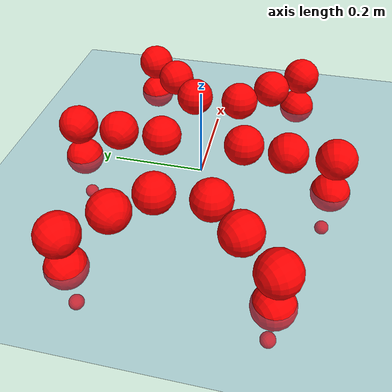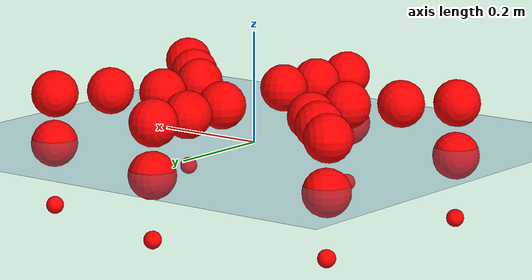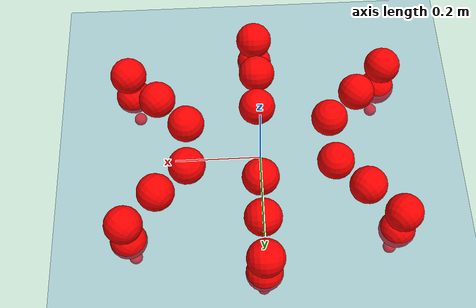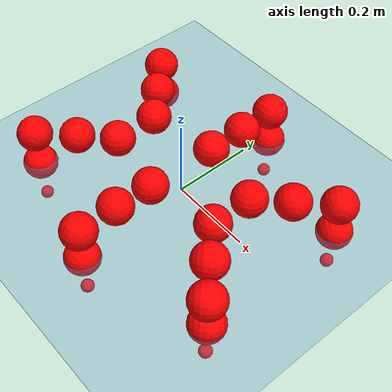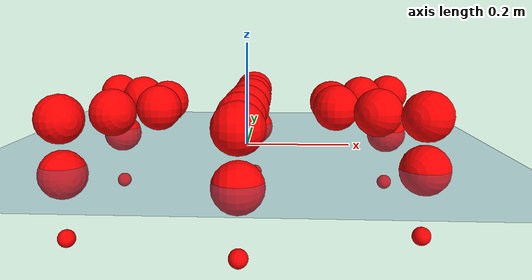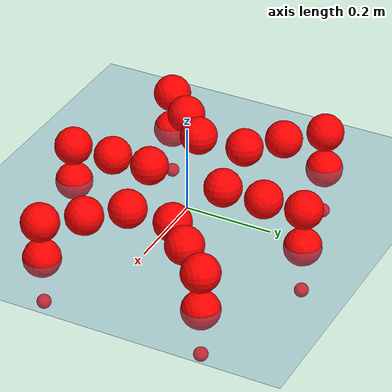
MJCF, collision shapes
<mujoco model="Golem">
  <compiler angle="radian" assetdir="assets" balanceinertia="true" inertiafromgeom="false"/>

  <option timestep="0.005" density="1.2" viscosity="2e-05"/>

  <size nkey="1"/>

  <visual>
    <quality shadowsize="8192"/>
    <map shadowclip="0.5"/>
  </visual>

  <default>
    <default class="/">
      <joint armature="0.01" damping="0.01" frictionloss="0.01"/>
      <geom contype="0" conaffinity="0" group="1" solref="-1000 -80"/>
      <site size="0.01 0.005 0.005" group="5"/>
      <general forcelimited="true" biastype="affine" gainprm="25" biasprm="0 -25 -0.5"/>
      <default class="visual">
        <geom type="mesh" group="2"/>
      </default>
      <default class="collision">
        <geom group="3"/>
      </default>
      <default class="foot">
        <geom size="0.01 0 0" condim="6" group="4" priority="1" solimp="0.015 1 0.01"/>
      </default>
      <default class="reward_collision_sphere">
        <geom group="5" rgba="1 0 0 1"/>
      </default>
    </default>
  </default>

  <asset>
    <texture type="skybox" colorspace="auto" name="//unnamed_texture_0" builtin="gradient" rgb1="0.95 0.95 0.95" rgb2="0.95 0.95 0.95" width="100" height="600"/>
    <texture type="2d" colorspace="auto" name="texplane" builtin="checker" rgb1="0.345 0.575 0.748" rgb2="0.345 0.575 0.748" markrgb="1 1 1" width="512" height="512"/>
    <material name="MatPlane" class="/" texture="texplane" texuniform="true" texrepeat="2 2" specular="0.9"/>
    <mesh name="body" class="/" file="body.stl" scale="0.001 0.001 0.001"/>
    <mesh name="coxa" class="/" file="coxa.stl" scale="0.001 0.001 0.001"/>
    <mesh name="femur" class="/" file="femur.stl" scale="0.001 0.001 0.001"/>
    <mesh name="tibia" class="/" file="tibia.stl" scale="0.001 0.001 0.001"/>
    <mesh name="tarsus" class="/" file="tarsus.stl" scale="0.001 0.001 0.001"/>
  </asset>

  <worldbody>
    <geom name="floor" class="/" size="100 100 0.125" type="plane" group="0" material="MatPlane"/>
    <light name="toplight_shadow" class="/" pos="0 0 5" dir="0.0990148 0.0990148 -0.990148" type="directional" ambient="0.04 0.04 0.04" diffuse="0.55 0.55 0.55" specular="0.12 0.12 0.12"/>
    <light name="toplight_fill" class="/" pos="0 0 5" dir="0.0990148 0.0990148 -0.990148" type="directional" castshadow="false" ambient="0.04 0.04 0.04" diffuse="0.3 0.3 0.3" specular="0.08 0.08 0.08"/>
    <body name="trunk" pos="0.00027887 -0.000895114 0.000485387" quat="0.999999 -0.000129103 0.000528918 0.001443">
      <inertial pos="-0.00196704 -0.00422983 -0.00460617" quat="0.99998 -0.00250992 0.00441938 -0.00369645" mass="4.59959" diaginertia="0.014355 0.00624601 0.0291255"/>
      <joint name="//unnamed_joint_0" type="free"/>
      <geom name="//unnamed_geom_1" class="/" pos="0 0 0.078358" quat="1 0 0 0" type="mesh" rgba="0.9 0.9 0.9 1" mesh="body"/>
      <site name="imu" class="/" pos="0.141248 -0.00717836 0.114284" size="0.0106385"/>
      <camera name="track" class="/" pos="0 -1.81142 0" quat="0.707107 0.707107 0 0" mode="trackcom"/>
      <camera name="ego_camera" class="/" pos="0.137996 0 0.122434" quat="-0.5 -0.5 0.5 0.5"/>
      <body name="coxa_RR" pos="-0.187361 -0.0770113 0.0787217" quat="0.382376 0.000492388 -0.000719559 -0.924006">
        <inertial pos="0.000595571 0.00203656 0.00201666" quat="0.999767 -0.0115992 -0.016671 -0.00734035" mass="0.222805" diaginertia="0.0131167 0.00609028 0.0258075"/>
        <joint name="coxa_joint_RR" class="/" pos="0 0 0" axis="-0.0031077 -0.00730235 -0.999969" stiffness="0.00151409" range="-3.14894 3.22295" armature="0.00856287" damping="0" frictionloss="0.0110173"/>
        <geom name="//unnamed_geom_2" class="/" type="mesh" rgba="0.2 0.2 0.2 1" mesh="coxa"/>
        <geom name="//unnamed_geom_3" class="reward_collision_sphere" size="0.0425542" pos="-0.0318453 0 0"/>
        <body name="femur_RR" pos="0.0645702 -0.0018028 0.000164302" quat="0.499499 -0.500157 0.500167 0.500178">
          <inertial pos="-0.00253182 0.00201208 0.000641829" quat="0.999939 0.00149062 0.0064543 -0.00885487" mass="0.233336" diaginertia="0.013145 0.00592866 0.0276947"/>
          <joint name="femur_joint_RR" class="/" pos="0 0 0" axis="0.00571027 0.00225932 -0.999981" range="-3.11732 3.12498" armature="0.0105938" damping="0.0391739" frictionloss="0.01178"/>
          <geom name="//unnamed_geom_4" class="/" type="mesh" rgba="0.9 0.9 0.9 1" mesh="femur"/>
          <geom name="//unnamed_geom_5" class="reward_collision_sphere" size="0.0425542"/>
          <body name="tibia_RR" pos="0.00144648 -0.100915 0.0013027" quat="-0.000153544 1 -0.000714917 0.000102419">
            <inertial pos="0.00043845 0.00198379 0.000642223" quat="0.999946 0.00394963 0.00227246 -0.0093512" mass="0.225791" diaginertia="0.0137182 0.00595827 0.0270178"/>
            <joint name="tibia_joint_RR" class="/" pos="0 0 0" axis="0.00467948 0.00369864 0.999982" range="-3.18423 3.14835" armature="0.0106716" damping="0.0129796" frictionloss="0.010373"/>
            <geom name="//unnamed_geom_6" class="/" type="mesh" rgba="0.2 0.2 0.2 1" mesh="tibia"/>
            <geom name="//unnamed_geom_7" class="reward_collision_sphere" size="0.0425542"/>
            <body name="tarsus_RR" pos="0.0956768 -0.000702877 -0.000758297" quat="1 -8.65255e-05 -7.65256e-05 -0.00037972">
              <inertial pos="0.0660141 -0.000750327 -0.00213297" quat="0.503295 0.497612 0.50072 0.498352" mass="0.232667" diaginertia="0.0126273 0.00582526 0.0266944"/>
              <joint name="tarsus_joint_RR" class="/" pos="0 0 0" axis="-0.0163052 0.0131645 0.99978" stiffness="0.00146732" range="-3.14813 3.14324" armature="0.0115695" damping="0.0507255" frictionloss="0.0111485"/>
              <geom name="//unnamed_geom_8" class="/" type="mesh" rgba="0.9 0.9 0.9 1" mesh="tarsus"/>
              <geom name="foot_1" class="foot" size="0.00932927" pos="0.118889 0 0" quat="0 -0.707107 0 0.707107"/>
              <geom name="//unnamed_geom_10" class="reward_collision_sphere" size="0.0425542"/>
              <geom name="//unnamed_geom_11" class="reward_collision_sphere" size="0.0159578" pos="0.114112 0 0"/>
              <site name="foot_1" class="foot" pos="0.118889 0 0" quat="0 -0.707107 0 0.707107" size="0.0106385"/>
            </body>
          </body>
        </body>
      </body>
      <body name="coxa_RM" pos="0.00245986 -0.121913 0.0841572" quat="0.707495 -0.000395124 0.000777942 -0.706718">
        <inertial pos="0.00226805 0.000583362 -0.00223875" quat="0.999997 0.00201044 0.00107562 -0.000579118" mass="0.231188" diaginertia="0.0127399 0.00601934 0.0265527"/>
        <joint name="coxa_joint_RM" class="/" pos="0 0 0" axis="0.00015588 -0.00176696 -0.999998" stiffness="0.00507443" range="-3.15604 3.1572" armature="0.0105428" damping="0.0202933" frictionloss="0.0109568"/>
        <geom name="//unnamed_geom_12" class="/" type="mesh" rgba="0.2 0.2 0.2 1" mesh="coxa"/>
        <geom name="//unnamed_geom_13" class="reward_collision_sphere" size="0.0425542" pos="-0.0318453 0 0"/>
        <body name="femur_RM" pos="0.0613841 -0.00377107 -0.00212872" quat="0.499812 -0.499744 0.499917 0.500527">
          <inertial pos="0.00138569 -0.00133644 0.00226507" quat="0.999834 0.0133393 -0.0033483 0.0119556" mass="0.259645" diaginertia="0.0138734 0.00643779 0.0280417"/>
          <joint name="femur_joint_RM" class="/" pos="0 0 0" axis="-0.000553124 0.00181485 -0.999998" range="-3.06132 3.08642" armature="0.0110375" damping="0.0277546" frictionloss="0.0106793"/>
          <geom name="//unnamed_geom_14" class="/" type="mesh" rgba="0.9 0.9 0.9 1" mesh="femur"/>
          <geom name="//unnamed_geom_15" class="reward_collision_sphere" size="0.0425542"/>
          <body name="tibia_RM" pos="0.00207315 -0.0983274 0.00228167" quat="3.44122e-05 0.999998 0.000449387 0.00201402">
            <inertial pos="-7.50815e-05 0.000993662 -0.00260082" quat="0.999995 -0.00247189 -0.00106671 0.0014642" mass="0.2426" diaginertia="0.0132468 0.00615357 0.028373"/>
            <joint name="tibia_joint_RM" class="/" pos="0 0 0" axis="0.0107527 -0.00544055 0.999927" stiffness="0.0166133" range="-3.13596 3.13866" armature="0.00955474" damping="0.00972686" frictionloss="0.00923326"/>
            <geom name="//unnamed_geom_16" class="/" type="mesh" rgba="0.2 0.2 0.2 1" mesh="tibia"/>
            <geom name="//unnamed_geom_17" class="reward_collision_sphere" size="0.0425542"/>
            <body name="tarsus_RM" pos="0.0917628 0.00134289 0.00076727" quat="0.999999 0.000811793 0.000282833 0.000803421">
              <inertial pos="0.0643183 0.00131588 0.000122102" quat="0.494913 0.49319 0.503473 0.508271" mass="0.242802" diaginertia="0.0134205 0.00614949 0.0285644"/>
              <joint name="tarsus_joint_RM" class="/" pos="0 0 0" axis="-0.00470021 -0.00570946 0.999973" stiffness="0.00550271" range="-3.14027 3.05808" armature="0.0100035" damping="0.010356" frictionloss="0.0127923"/>
              <geom name="//unnamed_geom_18" class="/" type="mesh" rgba="0.9 0.9 0.9 1" mesh="tarsus"/>
              <geom name="foot_2" class="foot" size="0.0117706" pos="0.118889 0 0" quat="0 -0.707107 0 0.707107"/>
              <geom name="//unnamed_geom_20" class="reward_collision_sphere" size="0.0425542"/>
              <geom name="//unnamed_geom_21" class="reward_collision_sphere" size="0.0159578" pos="0.114112 0 0"/>
              <site name="foot_2" class="foot" pos="0.118889 0 0" quat="0 -0.707107 0 0.707107" size="0.0106385"/>
            </body>
          </body>
        </body>
      </body>
      <body name="coxa_RF" pos="0.191226 -0.076633 0.0811545" quat="0.924201 0.000302308 -0.000743196 -0.381906">
        <inertial pos="-0.00255805 -0.00282327 0.000174352" quat="1 0.000520091 8.98139e-05 0.0001451" mass="0.245554" diaginertia="0.0129314 0.00599567 0.0270947"/>
        <joint name="coxa_joint_RF" class="/" pos="0 0 0" axis="-0.0106466 -0.00547878 -0.999928" stiffness="0.0257881" range="-3.10244 3.19593" armature="0.0092971" damping="0.00464269" frictionloss="0.0116232"/>
        <geom name="//unnamed_geom_22" class="/" type="mesh" rgba="0.2 0.2 0.2 1" mesh="coxa"/>
        <geom name="//unnamed_geom_23" class="reward_collision_sphere" size="0.0425542" pos="-0.0318453 0 0"/>
        <body name="femur_RF" pos="0.0635593 -0.00102365 0.00111299" quat="0.49947 -0.499641 0.500071 0.500817">
          <inertial pos="0.000919076 -0.00108988 -0.00357314" quat="0.999968 -0.0054296 0.00375753 0.00460158" mass="0.2528" diaginertia="0.0140776 0.00633318 0.0297076"/>
          <joint name="femur_joint_RF" class="/" pos="0 0 0" axis="0.0147934 -0.0127603 -0.999809" range="-3.16728 3.11487" armature="0.00833045" damping="0.0137901" frictionloss="0.010315"/>
          <geom name="//unnamed_geom_24" class="/" type="mesh" rgba="0.9 0.9 0.9 1" mesh="femur"/>
          <geom name="//unnamed_geom_25" class="reward_collision_sphere" size="0.0425542"/>
          <body name="tibia_RF" pos="-0.00392362 -0.0961246 0.000680735" quat="0.000351911 1 -0.000378025 0.000365565">
            <inertial pos="0.00124433 -1.12957e-05 0.000543787" quat="0.999991 -0.00138148 -0.00158759 -0.00375852" mass="0.235781" diaginertia="0.0139997 0.00611328 0.0263103"/>
            <joint name="tibia_joint_RF" class="/" pos="0 0 0" axis="0.00535114 -0.00166427 0.999984" range="-3.1501 3.08183" armature="0.0116963" damping="0.00203427" frictionloss="0.0119466"/>
            <geom name="//unnamed_geom_26" class="/" type="mesh" rgba="0.2 0.2 0.2 1" mesh="tibia"/>
            <geom name="//unnamed_geom_27" class="reward_collision_sphere" size="0.0425542"/>
            <body name="tarsus_RF" pos="0.0900424 -0.000688367 -0.000714898" quat="0.999998 0.00152464 -0.000870937 -0.000735673">
              <inertial pos="0.0617221 0.000294491 0.000958908" quat="0.498532 0.501793 0.500047 0.499623" mass="0.238419" diaginertia="0.0132034 0.00598624 0.027958"/>
              <joint name="tarsus_joint_RF" class="/" pos="0 0 0" axis="0.00843133 0.00953957 0.999919" range="-3.1496 3.12359" armature="0.0106994" damping="0.0111489" frictionloss="0.0110407"/>
              <geom name="//unnamed_geom_28" class="/" type="mesh" rgba="0.9 0.9 0.9 1" mesh="tarsus"/>
              <geom name="foot_3" class="foot" size="0.00977797" pos="0.118889 0 0" quat="0 -0.707107 0 0.707107"/>
              <geom name="//unnamed_geom_30" class="reward_collision_sphere" size="0.0425542"/>
              <geom name="//unnamed_geom_31" class="reward_collision_sphere" size="0.0159578" pos="0.114112 0 0"/>
              <site name="foot_3" class="foot" pos="0.118889 0 0" quat="0 -0.707107 0 0.707107" size="0.0106385"/>
            </body>
          </body>
        </body>
      </body>
      <body name="coxa_LR" pos="-0.191451 0.0794469 0.0774103" quat="0.38186 0.000466236 -0.000320096 0.92422">
        <inertial pos="0.000140999 -0.000284798 0.00288972" quat="0.999998 0.000971749 -0.00166061 0.000315863" mass="0.234558" diaginertia="0.013716 0.00622826 0.0287666"/>
        <joint name="coxa_joint_LR" class="/" pos="0 0 0" axis="-0.00229922 0.00867858 -0.99996" range="-3.16513 3.13649" armature="0.00968894" damping="0.00658029" frictionloss="0.0102793"/>
        <geom name="//unnamed_geom_32" class="/" type="mesh" rgba="0.2 0.2 0.2 1" mesh="coxa"/>
        <geom name="//unnamed_geom_33" class="reward_collision_sphere" size="0.0425542" pos="-0.0318453 0 0"/>
        <body name="femur_LR" pos="0.0609771 0.000270017 0.00314216" quat="0.500605 -0.500063 0.49895 0.500381">
          <inertial pos="-0.000495629 -0.00203025 0.00151048" quat="0.999943 0.00515473 0.00741874 -0.00575674" mass="0.248506" diaginertia="0.0137634 0.00600902 0.0278341"/>
          <joint name="femur_joint_LR" class="/" pos="0 0 0" axis="0.0139538 0.00656702 0.999881" stiffness="0.00499176" range="-3.09381 3.09587" armature="0.0109995" damping="0.0195459" frictionloss="0.00925554"/>
          <geom name="//unnamed_geom_34" class="/" type="mesh" rgba="0.9 0.9 0.9 1" mesh="femur"/>
          <geom name="//unnamed_geom_35" class="reward_collision_sphere" size="0.0425542"/>
          <body name="tibia_LR" pos="0.00179293 -0.0990123 0.00065412" quat="-0.000981557 0.999999 -0.000831096 6.43256e-05">
            <inertial pos="0.00397584 -0.00241697 0.00276985" quat="0.999943 0.0101651 0.00197858 0.0024504" mass="0.240852" diaginertia="0.0130113 0.00580176 0.0266647"/>
            <joint name="tibia_joint_LR" class="/" pos="0 0 0" axis="-0.000515887 0.000442042 -1" stiffness="0.00258373" range="-3.19388 3.123" armature="0.0097826" damping="0.0130759" frictionloss="0.00937785"/>
            <geom name="//unnamed_geom_36" class="/" type="mesh" rgba="0.2 0.2 0.2 1" mesh="tibia"/>
            <geom name="//unnamed_geom_37" class="reward_collision_sphere" size="0.0425542"/>
            <body name="tarsus_LR" pos="0.093886 -0.000607628 0.00260654" quat="1 -0.000394003 -2.62344e-06 -0.000239897">
              <inertial pos="0.0656905 -0.00109731 0.00262736" quat="0.500327 0.501579 0.498416 0.499672" mass="0.228912" diaginertia="0.0129204 0.00594884 0.0267319"/>
              <joint name="tarsus_joint_LR" class="/" pos="0 0 0" axis="0.00423446 -0.0135777 -0.999899" stiffness="0.0025782" range="-3.18517 3.15484" armature="0.0092984" damping="0.0226086" frictionloss="0.010287"/>
              <geom name="//unnamed_geom_38" class="/" type="mesh" rgba="0.9 0.9 0.9 1" mesh="tarsus"/>
              <geom name="foot_4" class="foot" size="0.0117565" pos="0.118889 0 0" quat="0.707107 0 -0.707107 0"/>
              <geom name="//unnamed_geom_40" class="reward_collision_sphere" size="0.0425542"/>
              <geom name="//unnamed_geom_41" class="reward_collision_sphere" size="0.0159578" pos="0.114112 0 0"/>
              <site name="foot_4" class="foot" pos="0.118889 0 0" quat="0.707107 0 -0.707107 0" size="0.0106385"/>
            </body>
          </body>
        </body>
      </body>
      <body name="coxa_LM" pos="0.00294644 0.120952 0.0807856" quat="0.706999 3.14146e-05 -0.00109272 0.707214">
        <inertial pos="-0.00256608 -0.00369518 0.00274252" quat="1 -0.000402678 0.000408871 -0.000525833" mass="0.241138" diaginertia="0.0139629 0.00612831 0.0276551"/>
        <joint name="coxa_joint_LM" class="/" pos="0 0 0" axis="-0.0152261 0.000914762 -0.999884" stiffness="0.00391845" range="-3.12473 3.12366" armature="0.00980827" damping="0.0300276" frictionloss="0.0111217"/>
        <geom name="//unnamed_geom_42" class="/" type="mesh" rgba="0.2 0.2 0.2 1" mesh="coxa"/>
        <geom name="//unnamed_geom_43" class="reward_collision_sphere" size="0.0425542" pos="-0.0318453 0 0"/>
        <body name="femur_LM" pos="0.0651897 0.000435636 -0.00128589" quat="0.499836 -0.501229 0.498914 0.500018">
          <inertial pos="-0.000221988 0.000791709 -0.00255352" quat="0.999993 -0.00113267 -0.00273664 0.00248228" mass="0.24832" diaginertia="0.0137983 0.00628206 0.0293568"/>
          <joint name="femur_joint_LM" class="/" pos="0 0 0" axis="0.0106271 0.00918419 0.999901" range="-3.09522 3.13279" armature="0.0126669" damping="0.0138886" frictionloss="0.0111746"/>
          <geom name="//unnamed_geom_44" class="/" type="mesh" rgba="0.9 0.9 0.9 1" mesh="femur"/>
          <geom name="//unnamed_geom_45" class="reward_collision_sphere" size="0.0425542"/>
          <body name="tibia_LM" pos="-0.00118124 -0.0941381 0.000487138" quat="0.000274805 1 -0.000187805 9.23111e-05">
            <inertial pos="0.00258779 -0.00196804 0.00167434" quat="0.999925 0.0115051 0.00391119 0.00153494" mass="0.24891" diaginertia="0.0135021 0.00593856 0.026151"/>
            <joint name="tibia_joint_LM" class="/" pos="0 0 0" axis="-0.00260821 0.00308776 -0.999992" range="-3.18708 3.1316" armature="0.0106994" damping="0.0161118" frictionloss="0.0102472"/>
            <geom name="//unnamed_geom_46" class="/" type="mesh" rgba="0.2 0.2 0.2 1" mesh="tibia"/>
            <geom name="//unnamed_geom_47" class="reward_collision_sphere" size="0.0425542"/>
            <body name="tarsus_LM" pos="0.0927972 0.000417444 0.00245889" quat="1 0.000197872 5.6834e-06 -0.000322014">
              <inertial pos="0.0603193 -0.000612814 -0.000467921" quat="0.502114 0.497543 0.496225 0.504077" mass="0.223394" diaginertia="0.0134056 0.00605677 0.027407"/>
              <joint name="tarsus_joint_LM" class="/" pos="0 0 0" axis="-0.00428857 0.00884622 -0.999952" range="-3.14701 3.13733" armature="0.0108367" damping="0" frictionloss="0.0105726"/>
              <geom name="//unnamed_geom_48" class="/" type="mesh" rgba="0.9 0.9 0.9 1" mesh="tarsus"/>
              <geom name="foot_5" class="foot" size="0.0117542" pos="0.118889 0 0" quat="0.707107 0 -0.707107 0"/>
              <geom name="//unnamed_geom_50" class="reward_collision_sphere" size="0.0425542"/>
              <geom name="//unnamed_geom_51" class="reward_collision_sphere" size="0.0159578" pos="0.114112 0 0"/>
              <site name="foot_5" class="foot" pos="0.118889 0 0" quat="0.707107 0 -0.707107 0" size="0.0106385"/>
            </body>
          </body>
        </body>
      </body>
      <body name="coxa_LF" pos="0.190365 0.0754864 0.0790345" quat="0.923851 0.000145805 0.000171589 0.382753">
        <inertial pos="-0.000616725 0.00271708 0.000547321" quat="1 0.000401711 -0.000773991 -0.000187877" mass="0.240136" diaginertia="0.0132094 0.00590973 0.0268501"/>
        <joint name="coxa_joint_LF" class="/" pos="0 0 0" axis="-0.0163151 -0.00143069 -0.999866" range="-3.11326 3.1012" armature="0.0118366" damping="0.0086667" frictionloss="0.0104064"/>
        <geom name="//unnamed_geom_52" class="/" type="mesh" rgba="0.2 0.2 0.2 1" mesh="coxa"/>
        <geom name="//unnamed_geom_53" class="reward_collision_sphere" size="0.0425542" pos="-0.0318453 0 0"/>
        <body name="femur_LF" pos="0.0621069 -0.00393723 0.00412074" quat="0.500488 -0.500354 0.498721 0.500436">
          <inertial pos="0.00162247 0.00170064 -0.00265667" quat="1 0.000411691 -8.22519e-05 -0.000210027" mass="0.236672" diaginertia="0.0131597 0.00606842 0.0281147"/>
          <joint name="femur_joint_LF" class="/" pos="0 0 0" axis="-0.00225569 -0.00633246 0.999977" stiffness="0.000325356" range="-3.13716 3.18626" armature="0.011219" damping="0.0117256" frictionloss="0.0120104"/>
          <geom name="//unnamed_geom_54" class="/" type="mesh" rgba="0.9 0.9 0.9 1" mesh="femur"/>
          <geom name="//unnamed_geom_55" class="reward_collision_sphere" size="0.0425542"/>
          <body name="tibia_LF" pos="0.0028782 -0.100264 0.00188562" quat="-3.03606e-05 0.999999 -0.00127584 -0.000161383">
            <inertial pos="0.00257741 0.00179094 0.00221103" quat="0.999923 -0.0115502 5.95499e-05 -0.00452202" mass="0.245455" diaginertia="0.0135285 0.00623024 0.0285421"/>
            <joint name="tibia_joint_LF" class="/" pos="0 0 0" axis="0.00200962 0.00175313 -0.999996" range="-3.1496 3.11341" armature="0.0129126" damping="0.0250391" frictionloss="0.0106228"/>
            <geom name="//unnamed_geom_56" class="/" type="mesh" rgba="0.2 0.2 0.2 1" mesh="tibia"/>
            <geom name="//unnamed_geom_57" class="reward_collision_sphere" size="0.0425542"/>
            <body name="tarsus_LF" pos="0.0908074 0.00172897 8.83694e-05" quat="0.999998 -0.00168344 -0.000416069 0.00110777">
              <inertial pos="0.0628261 0.00219815 0.000944073" quat="0.501876 0.499292 0.499846 0.498981" mass="0.245275" diaginertia="0.0131614 0.00616592 0.0269506"/>
              <joint name="tarsus_joint_LF" class="/" pos="0 0 0" axis="0.00600603 -0.00810448 -0.999949" range="-3.17378 3.17376" armature="0.0114967" damping="0" frictionloss="0.0108239"/>
              <geom name="//unnamed_geom_58" class="/" type="mesh" rgba="0.9 0.9 0.9 1" mesh="tarsus"/>
              <geom name="foot_6" class="foot" size="0.0110459" pos="0.118889 0 0" quat="0.707107 0 -0.707107 0"/>
              <geom name="//unnamed_geom_60" class="reward_collision_sphere" size="0.0425542"/>
              <geom name="//unnamed_geom_61" class="reward_collision_sphere" size="0.0159578" pos="0.114112 0 0"/>
              <site name="foot_6" class="foot" pos="0.118889 0 0" quat="0.707107 0 -0.707107 0" size="0.0106385"/>
            </body>
          </body>
        </body>
      </body>
    </body>
  </worldbody>

  <contact>
    <pair class="/" geom1="floor" geom2="foot_1" name="//unnamed_contact_0"/>
    <pair class="/" geom1="floor" geom2="foot_2" name="//unnamed_contact_1"/>
    <pair class="/" geom1="floor" geom2="foot_3" name="//unnamed_contact_2"/>
    <pair class="/" geom1="floor" geom2="foot_4" name="//unnamed_contact_3"/>
    <pair class="/" geom1="floor" geom2="foot_5" name="//unnamed_contact_4"/>
    <pair class="/" geom1="floor" geom2="foot_6" name="//unnamed_contact_5"/>
  </contact>

  <actuator>
    <general name="coxa_joint_RR" class="/" joint="coxa_joint_RR" forcerange="-8.17794 8.17794" gainprm="26.0644" biasprm="0 -26.0644 -0.5196"/>
    <general name="femur_joint_RR" class="/" joint="femur_joint_RR" forcerange="-7.80137 7.80137" gainprm="26.0644" biasprm="0 -26.0644 -0.5196"/>
    <general name="tibia_joint_RR" class="/" joint="tibia_joint_RR" forcerange="-7.83346 7.83346" gainprm="26.0644" biasprm="0 -26.0644 -0.5196"/>
    <general name="tarsus_joint_RR" class="/" joint="tarsus_joint_RR" forcerange="-7.00065 7.00065" gainprm="26.0644" biasprm="0 -26.0644 -0.5196"/>
    <general name="coxa_joint_RM" class="/" joint="coxa_joint_RM" forcerange="-7.00835 7.00835" gainprm="26.0644" biasprm="0 -26.0644 -0.5196"/>
    <general name="femur_joint_RM" class="/" joint="femur_joint_RM" forcerange="-8.00081 8.00081" gainprm="26.0644" biasprm="0 -26.0644 -0.5196"/>
    <general name="tibia_joint_RM" class="/" joint="tibia_joint_RM" forcerange="-7.85498 7.85498" gainprm="26.0644" biasprm="0 -26.0644 -0.5196"/>
    <general name="tarsus_joint_RM" class="/" joint="tarsus_joint_RM" forcerange="-8.47428 8.47428" gainprm="26.0644" biasprm="0 -26.0644 -0.5196"/>
    <general name="coxa_joint_RF" class="/" joint="coxa_joint_RF" forcerange="-8.13657 8.13657" gainprm="26.0644" biasprm="0 -26.0644 -0.5196"/>
    <general name="femur_joint_RF" class="/" joint="femur_joint_RF" forcerange="-7.88925 7.88925" gainprm="26.0644" biasprm="0 -26.0644 -0.5196"/>
    <general name="tibia_joint_RF" class="/" joint="tibia_joint_RF" forcerange="-7.74146 7.74146" gainprm="26.0644" biasprm="0 -26.0644 -0.5196"/>
    <general name="tarsus_joint_RF" class="/" joint="tarsus_joint_RF" forcerange="-8.35678 8.35678" gainprm="26.0644" biasprm="0 -26.0644 -0.5196"/>
    <general name="coxa_joint_LR" class="/" joint="coxa_joint_LR" forcerange="-7.28399 7.28399" gainprm="26.0644" biasprm="0 -26.0644 -0.5196"/>
    <general name="femur_joint_LR" class="/" joint="femur_joint_LR" forcerange="-7.37869 7.37869" gainprm="26.0644" biasprm="0 -26.0644 -0.5196"/>
    <general name="tibia_joint_LR" class="/" joint="tibia_joint_LR" forcerange="-8.61564 8.61564" gainprm="26.0644" biasprm="0 -26.0644 -0.5196"/>
    <general name="tarsus_joint_LR" class="/" joint="tarsus_joint_LR" forcerange="-6.72541 6.72541" gainprm="26.0644" biasprm="0 -26.0644 -0.5196"/>
    <general name="coxa_joint_LM" class="/" joint="coxa_joint_LM" forcerange="-8.22516 8.22516" gainprm="26.0644" biasprm="0 -26.0644 -0.5196"/>
    <general name="femur_joint_LM" class="/" joint="femur_joint_LM" forcerange="-7.50773 7.50773" gainprm="26.0644" biasprm="0 -26.0644 -0.5196"/>
    <general name="tibia_joint_LM" class="/" joint="tibia_joint_LM" forcerange="-7.76733 7.76733" gainprm="26.0644" biasprm="0 -26.0644 -0.5196"/>
    <general name="tarsus_joint_LM" class="/" joint="tarsus_joint_LM" forcerange="-7.12408 7.12408" gainprm="26.0644" biasprm="0 -26.0644 -0.5196"/>
    <general name="coxa_joint_LF" class="/" joint="coxa_joint_LF" forcerange="-7.8587 7.8587" gainprm="26.0644" biasprm="0 -26.0644 -0.5196"/>
    <general name="femur_joint_LF" class="/" joint="femur_joint_LF" forcerange="-7.83387 7.83387" gainprm="26.0644" biasprm="0 -26.0644 -0.5196"/>
    <general name="tibia_joint_LF" class="/" joint="tibia_joint_LF" forcerange="-8.47496 8.47496" gainprm="26.0644" biasprm="0 -26.0644 -0.5196"/>
    <general name="tarsus_joint_LF" class="/" joint="tarsus_joint_LF" forcerange="-7.35879 7.35879" gainprm="26.0644" biasprm="0 -26.0644 -0.5196"/>
  </actuator>

  <sensor>
    <gyro site="imu" name="imu_angular_velocity"/>
    <velocimeter site="imu" name="imu_linear_velocity"/>
    <framelinvel objtype="site" objname="foot_1" name="foot_1_global_linear_velocity"/>
    <framelinvel objtype="site" objname="foot_2" name="foot_2_global_linear_velocity"/>
    <framelinvel objtype="site" objname="foot_3" name="foot_3_global_linear_velocity"/>
    <framelinvel objtype="site" objname="foot_4" name="foot_4_global_linear_velocity"/>
    <framelinvel objtype="site" objname="foot_5" name="foot_5_global_linear_velocity"/>
    <framelinvel objtype="site" objname="foot_6" name="foot_6_global_linear_velocity"/>
  </sensor>

  <keyframe>
    <key name="home" qpos="0 0 0.1457 1 0 0 0 0 0 0 0 0 0 0 0 0 0 0 0 0 0 0 0 0 0 0 0 0 0 0 0"/>
  </keyframe>
</mujoco>
